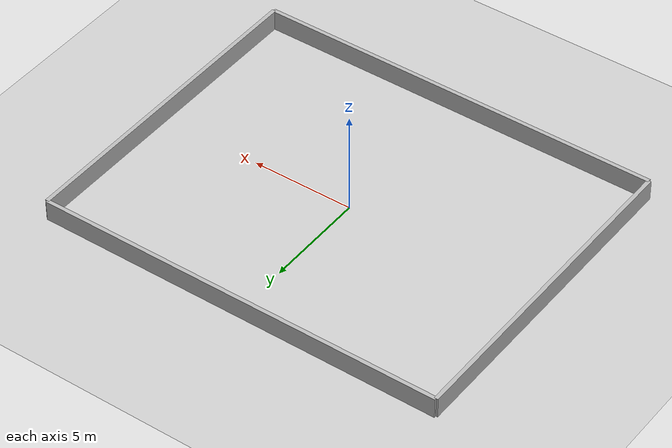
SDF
<?xml version="1.0" ?>
<sdf version="1.6">
  <world name="dwa_test_world">

    <include>
      <uri>model://ground_plane</uri>
    </include>

    <include>
      <uri>model://sun</uri>
    </include>

    <!-- CAMERA VIEW -->
    <gui fullscreen='0'>
      <camera name='top_view'>
        <pose>0 0 5 0 1.57 0</pose>
      </camera>
    </gui>

    <!-- ================= WALLS ================= -->

    <!-- TOP -->
    <model name="wall_1">
      <static>true</static>
      <link name="link">
        <pose>0 8 0.5 0 0 0</pose>
        <collision name="collision">
          <geometry>
            <box><size>20 0.2 1</size></box>
          </geometry>
        </collision>
        <visual name="visual">
          <geometry>
            <box><size>20 0.2 1</size></box>
          </geometry>
        </visual>
      </link>
    </model>

    <!-- BOTTOM -->
    <model name="wall_2">
      <static>true</static>
      <link name="link">
        <pose>0 -8 0.5 0 0 0</pose>
        <collision name="collision">
          <geometry>
            <box><size>20 0.2 1</size></box>
          </geometry>
        </collision>
        <visual name="visual">
          <geometry>
            <box><size>20 0.2 1</size></box>
          </geometry>
        </visual>
      </link>
    </model>

    <!-- RIGHT -->
    <model name="wall_3">
      <static>true</static>
      <link name="link">
        <pose>10 0 0.5 0 0 1.57</pose>
        <collision name="collision">
          <geometry>
            <box><size>16 0.2 1</size></box>
          </geometry>
        </collision>
        <visual name="visual">
          <geometry>
            <box><size>16 0.2 1</size></box>
          </geometry>
        </visual>
      </link>
    </model>

    <!-- LEFT -->
    <model name="wall_4">
      <static>true</static>
      <link name="link">
        <pose>-10 0 0.5 0 0 1.57</pose>
        <collision name="collision">
          <geometry>
            <box><size>16 0.2 1</size></box>
          </geometry>
        </collision>
        <visual name="visual">
          <geometry>
            <box><size>16 0.2 1</size></box>
          </geometry>
        </visual>
      </link>
    </model>

  </world>
</sdf>
